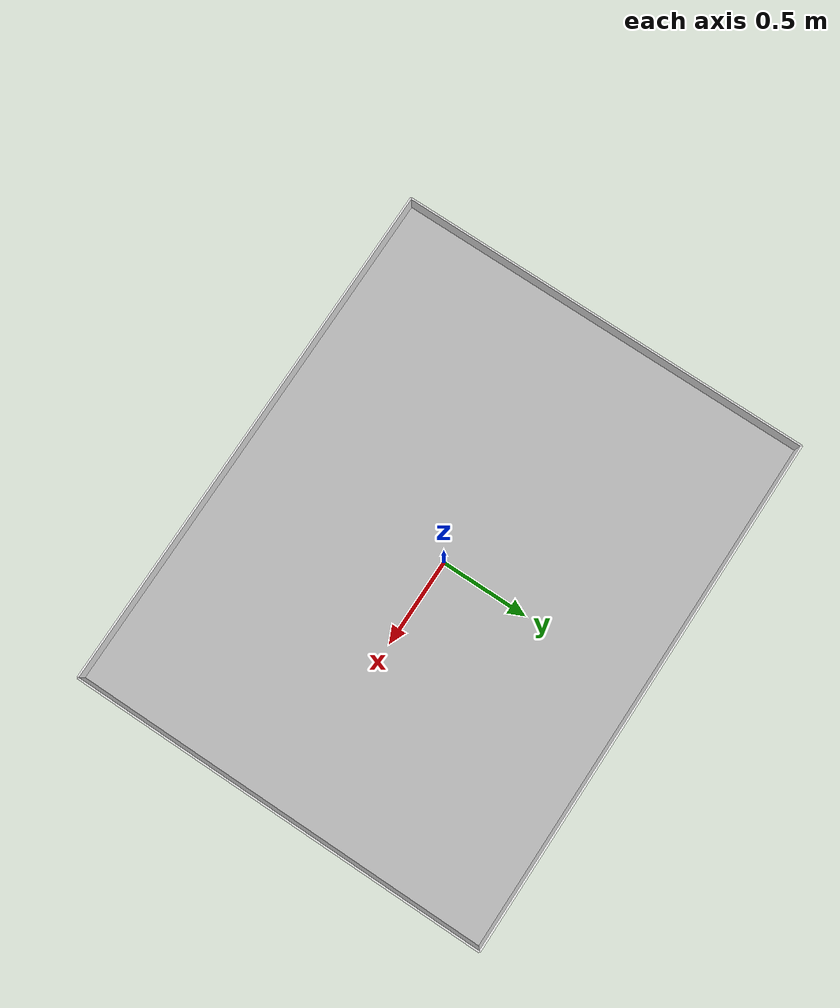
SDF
<?xml version="1.0"?>
<sdf version='1.6'>
    <world name='simulation_world'>
        <scene>
            <ambient>0.5 0.5 0.5 1.0</ambient>
            <shadows>1</shadows>
        </scene>
        <include>
            <uri>model://sun</uri>
        </include>
        <include>
            <uri>model://floor</uri>
        </include>
        <include>
            <uri>model://walls</uri>
        </include>
        <physics type='ode'>
            <max_step_size>0.001</max_step_size>
            <real_time_factor>1.000000</real_time_factor>
            <real_time_update_rate>1000.0</real_time_update_rate>
            <ode>
                <solver>
                    <type>quick</type>
                    <iters>50</iters>
                </solver>
            </ode>
        </physics>
    </world>
</sdf>

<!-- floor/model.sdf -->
<sdf version="1.6">
<model name="floor">
  <static>true</static>
    <link name="link">
      <collision name="collision">
        <geometry>
          <plane>
            <normal>0 0 1</normal>
            <size>3 2.4</size>
          </plane>
        </geometry>
        <surface>
          <friction>
            <ode>
              <mu>100</mu>
              <mu2>50</mu2>
            </ode>
          </friction>
        </surface>
      </collision>
      <visual name="visual">
        <cast_shadows>false</cast_shadows>
        <geometry>
          <plane>
            <normal>0 0 1</normal>
            <size>3 2.4</size>
          </plane>
        </geometry>
        <material>
          <script>
            <uri>model://floor/materials/scripts</uri>
            <uri>model://floor/materials/textures</uri>
            <name>Floor/Image</name>
          </script>
          Gazebo/Gray
        </material>
      </visual>
    </link>
  </model>
</sdf>

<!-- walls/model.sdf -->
<sdf version="1.5">
  <model name="walls">
    <static>true</static>
    <link name="bottom">
      <pose>0 -1.2 0.05 0 0 0</pose>
      <collision name="collision">
        <geometry>
          <box>
            <size>3 0.01 0.1</size>
          </box>
        </geometry>
        <surface>
          <friction>
            <ode>
              <mu>100</mu>
              <mu2>50</mu2>
            </ode>
          </friction>
        </surface>
      </collision>
      <visual name="visual">
        <cast_shadows>false</cast_shadows>
        <geometry>
          <box>
            <size>3 0.01 0.1</size>
          </box>
        </geometry>
        <material>
          <script>
            <uri>file://media/materials/scripts/gazebo.material</uri>
            <name>Gazebo/White</name>
          </script>
        </material>
      </visual>
    </link>
    <link name="top">
      <pose>0 1.2 0.05 0 0 0</pose>
      <collision name="collision">
        <geometry>
          <box>
            <size>3 0.01 0.1</size>
          </box>
        </geometry>
        <surface>
          <friction>
            <ode>
              <mu>100</mu>
              <mu2>50</mu2>
            </ode>
          </friction>
        </surface>
      </collision>
      <visual name="visual">
        <cast_shadows>false</cast_shadows>
        <geometry>
          <box>
            <size>3 0.01 0.1</size>
          </box>
        </geometry>
        <material>
          <script>
            <uri>file://media/materials/scripts/gazebo.material</uri>
            <name>Gazebo/White</name>
          </script>
        </material>
      </visual>
    </link>
    <link name="left">
      <pose>-1.5 0 0.05 0 0 0</pose>
      <collision name="collision">
        <geometry>
          <box>
            <size>0.01 2.4 0.1</size>
          </box>
        </geometry>
        <surface>
          <friction>
            <ode>
              <mu>100</mu>
              <mu2>50</mu2>
            </ode>
          </friction>
        </surface>
      </collision>
      <visual name="visual">
        <cast_shadows>false</cast_shadows>
        <geometry>
          <box>
            <size>0.01 2.4 0.1</size>
          </box>
        </geometry>
        <material>
          <script>
            <uri>file://media/materials/scripts/gazebo.material</uri>
            <name>Gazebo/White</name>
          </script>
        </material>
      </visual>
    </link>
    <link name="right">
      <pose>1.5 0 0.05 0 0 0</pose>
      <collision name="collision">
        <geometry>
          <box>
            <size>0.01 2.4 0.1</size>
          </box>
        </geometry>
        <surface>
          <friction>
            <ode>
              <mu>100</mu>
              <mu2>50</mu2>
            </ode>
          </friction>
        </surface>
      </collision>
      <visual name="visual">
        <cast_shadows>false</cast_shadows>
        <geometry>
          <box>
            <size>0.01 2.4 0.1</size>
          </box>
        </geometry>
        <material>
          <script>
            <uri>file://media/materials/scripts/gazebo.material</uri>
            <name>Gazebo/White</name>
          </script>
        </material>
      </visual>
    </link>
  </model>
</sdf>
